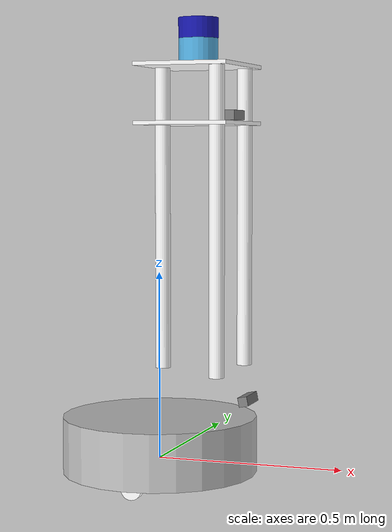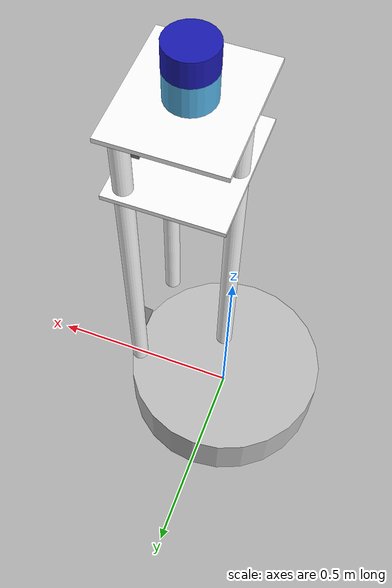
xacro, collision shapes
<?xml version="1.0"?>

<robot name="water_all" xmlns:xacro="http://ros.org/wiki/xacro">
  <xacro:property name="M_PI" value="3.1415926535897931" />
  <link name="base_footprint"/>

  <joint name="base_footprint_joint" type="fixed">
    <parent link="base_footprint"/>
    <child link="base_link"/>
    <origin xyz="0 0 0" rpy="0 0 0"/>
  </joint>

  <link
    name="base_link">
        >
    <inertial>
      <origin
        xyz="0.000104664511012093 0.0049105114230535 0.145650059711867"
        rpy="0 0 0" />
      <mass
        value="3.71154442446242" />
      <inertia
        ixx="0.0465430882693072"
        ixy="0"
        ixz="0"
        iyy="0.0625130465095892"
        iyz="0"
        izz="0.0934102121820444" />
    </inertial>
    <visual>
      <origin
        xyz="0 0 0"
        rpy="0 0 -${M_PI/2}" />
      <geometry>
        <mesh
          filename="package://water_description/meshes/base_link.STL" />
      </geometry>
      <material
        name="">
        <color
          rgba="0.752941176470588 0.752941176470588 0.752941176470588 1" />
      </material>
    </visual>
    <collision>
      <origin
        xyz="0 0 0.04"
        rpy="0 0 -${M_PI/2}" />
      <geometry>
        <cylinder length="0.15" radius="0.26"/>
      </geometry>
    </collision>
  </link>

 <joint name="base_link2_joint" type="fixed">
    <parent link="base_link"/>
    <child link="base_link2"/>
    <origin xyz="0.0 0.0 0.0" rpy="0 0 -${M_PI/2}"/>
    <axis xyz="0 0 1"/>
  </joint>

  <link name="base_link2">
    <visual>
      <geometry>
        <cylinder length="0.0206" radius="0.00035"/>
      </geometry>
      <origin xyz="0 0 0" rpy="0 0 0"/>
    </visual>
    <collision>
      <geometry>
        <cylinder length="0.0206" radius="0.035"/>
      </geometry>
      <origin rpy="0 0 0" xyz="0 0 0"/>
    </collision>
    <inertial>
      <mass value="0.01" />
      <origin xyz="0 0 0" />
      <inertia ixx="0.001" ixy="0.0" ixz="0.0"
                iyy="0.001" iyz="0.0"
                izz="0.001" />
    </inertial>
  </link>

 <joint name="wheel_left_joint" type="continuous">
    <parent link="base_link2"/>
    <child link="wheel_left_link"/>
    <origin xyz="-${0.40/2} 0.0 -0.04" rpy="${-M_PI/2} 0 ${M_PI/2}"/>
    <axis xyz="0 0 1"/>
  </joint>

  <link name="wheel_left_link">
    <visual>
      <material
        name="">
        <color
          rgba="1.0 1.0 1.0 1" />
      </material>
      <geometry>
        <cylinder length="0.0206" radius="0.028"/>
      </geometry>
      <origin xyz="0 0 0" rpy="0 0 0"/>
    </visual>
    <collision>
      <geometry>
        <cylinder length="0.0206" radius="0.028"/>
      </geometry>
      <origin rpy="0 0 0" xyz="0 0 0"/>
    </collision>
    <inertial>
      <mass value="0.01" />
      <origin xyz="0 0 0" />
      <inertia ixx="0.001" ixy="0.0" ixz="0.0"
                iyy="0.001" iyz="0.0"
                izz="0.001" />
    </inertial>
  </link>

  <joint name="wheel_right_joint" type="continuous">
    <parent link="base_link2"/>
    <child link="wheel_right_link"/>
    <origin xyz="${0.40/2} 0.0 -0.04" rpy="${-M_PI/2} 0 ${M_PI/2}"/>
    <axis xyz="0 0 1"/>
  </joint>
  <link name="wheel_right_link">
    <visual>
      <material
        name="">
        <color
          rgba="1.0 1.0 1.0 1" />
      </material>
      <geometry>
        <cylinder length="0.0206" radius="0.028"/>
      </geometry>
      <origin xyz="0 0 0" rpy="0 0 0"/>
    </visual>
    <collision>
      <geometry>
        <cylinder length="0.0206" radius="0.028"/>
      </geometry>
      <origin rpy="0 0 0" xyz="0 0 0"/>
    </collision>
    <inertial>
      <mass value="0.01" />
      <origin xyz="0 0 0" />
      <inertia ixx="0.001" ixy="0.0" ixz="0.0"
                iyy="0.001" iyz="0.0"
                izz="0.001" />
    </inertial>
  </link>

  <joint name="caster_front_joint" type="fixed">
    <parent link="base_link2"/>
    <child link="caster_front_link"/>
    <origin xyz="0 0.15 -0.05" rpy="${-M_PI/2} 0 ${M_PI/2}"/>
  </joint>
  <link name="caster_front_link">
    <collision>
      <geometry>
        <cylinder length="0.0176" radius="0.017"/>
      </geometry>
      <origin rpy="0 0 0" xyz="0 0 0"/>
    </collision>
    <inertial>
      <mass value="0.01" />
      <origin xyz="0 0 0" />
      <inertia ixx="0.1" ixy="0.0" ixz="0.0"
                iyy="0.1" iyz="0.0"
                izz="0.1" />
    </inertial>
    <visual>
      <material
        name="">
        <color
          rgba="1.0 1.0 1.0 1" />
      </material>
      <geometry>
        <cylinder length="0.0176" radius="0.017"/>
      </geometry>
      <origin xyz="0 0 0" rpy="0 0 0"/>
    </visual>
  </link>

  <joint name="caster_back_joint" type="fixed">
    <parent link="base_link2"/>
    <child link="caster_back_link"/>
    <origin xyz="0.0 -0.15 -0.05" rpy="${-M_PI/2} 0 ${M_PI/2}"/>
  </joint>
  <link name="caster_back_link">
    <collision>
      <geometry>
        <cylinder length="0.0176" radius="0.017"/>
      </geometry>
      <origin rpy="0 0 0" xyz="0 0 0"/>
    </collision>
    <inertial>
      <mass value="0.01" />
      <origin xyz="0 0 0" />
      <inertia ixx="0.1" ixy="0.0" ixz="0.0"
                iyy="0.1" iyz="0.0"
                izz="0.1" />
    </inertial>
    <visual>
      <material
        name="">
        <color
          rgba="1.0 1.0 1.0 1" />
      </material>
      <geometry>
        <cylinder length="0.0176" radius="0.017"/>
      </geometry>
      <origin xyz="0 0 0" rpy="0 0 0"/>
    </visual>
  </link>

  <link name="holder1">
    <collision>
      <geometry>
        <cylinder length="0.8" radius="0.02"/>
      </geometry>
      <origin rpy="0 0 0" xyz="0 0 0"/>
    </collision>
    <inertial>
      <mass value="0.01" />
      <origin xyz="0 0 -0.3" />
      <inertia ixx="0.001" ixy="0.0" ixz="0.0"
                iyy="0.001" iyz="0.0"
                izz="0.001" />
    </inertial>
    <visual>
      <material
        name="">
        <color
          rgba="1.0 1.0 1.0 1" />
      </material>
      <geometry>
        <cylinder length="0.8" radius="0.02"/>
      </geometry>
      <origin xyz="0 0 0" rpy="0 0 0"/>
    </visual>
  </link>

  <link name="holder2">
    <collision>
      <geometry>
        <cylinder length="0.8" radius="0.02"/>
      </geometry>
      <origin rpy="0 0 0" xyz="0 0 0"/>
    </collision>
    <inertial>
      <mass value="0.01" />
      <origin xyz="0 0 -0.3" />
      <inertia ixx="0.001" ixy="0.0" ixz="0.0"
                iyy="0.001" iyz="0.0"
                izz="0.001" />
    </inertial>
    <visual>
      <material
        name="">
        <color
          rgba="1.0 1.0 1.0 1" />
      </material>
      <geometry>
        <cylinder length="0.8" radius="0.02"/>
      </geometry>
      <origin xyz="0 0 0" rpy="0 0 0"/>
    </visual>
  </link>

  <link name="holder3">
    <collision>
      <geometry>
        <cylinder length="0.8" radius="0.02"/>
      </geometry>
      <origin rpy="0 0 0" xyz="0 0 0"/>
    </collision>
    <inertial>
      <mass value="0.01" />
      <origin xyz="0 0 -0.3" />
      <inertia ixx="0.001" ixy="0.0" ixz="0.0"
                iyy="0.001" iyz="0.0"
                izz="0.001" />
    </inertial>
    <visual>
      <material
        name="">
        <color
          rgba="1.0 1.0 1.0 1" />
      </material>
      <geometry>
        <cylinder length="0.8" radius="0.02"/>
      </geometry>
      <origin xyz="0 0 0" rpy="0 0 0"/>
    </visual>
  </link>

  <joint name="holder1_joint" type="fixed">
    <origin xyz="0.0 0.01 0.645" rpy="0 0 0"/>
    <parent link="base_link2"/>
    <child link="holder1"/>
  </joint>
  <joint name="holder2_joint" type="fixed">
    <origin xyz="0.1175 0.2 0.645" rpy="0 0 0"/>
    <parent link="base_link2"/>
    <child link="holder2"/>
  </joint>
  <joint name="holder3_joint" type="fixed">
    <origin xyz="-0.1175 0.2 0.645" rpy="0 0 0"/>
    <parent link="base_link2"/>
    <child link="holder3"/>
  </joint>

  <link name="pan1">
    <collision>
      <geometry>
        <box size=".3 .25 .01"/>
      </geometry>
      <origin rpy="0 0 0" xyz="0 0 0"/>
    </collision>
    <inertial>
      <mass value="0.01" />
      <origin xyz="0 0 0" />
      <inertia ixx="0.001" ixy="0.0" ixz="0.0"
                iyy="0.001" iyz="0.0"
                izz="0.001" />
    </inertial>
    <visual>
      <material
        name="">
        <color
          rgba="1.0 1.0 1.0 1" />
      </material>
      <geometry>
        <box size=".3 .25 .01"/>
      </geometry>
      <origin xyz="0 0 0" rpy="0 0 0"/>
    </visual>
  </link>
  <link name="pan2">
    <collision>
      <geometry>
        <box size=".3 .25 .01"/>
      </geometry>
      <origin rpy="0 0 0" xyz="0 0 0"/>
    </collision>
    <inertial>
      <mass value="0.01" />
      <origin xyz="0 0 0" />
      <inertia ixx="0.001" ixy="0.0" ixz="0.0"
                iyy="0.001" iyz="0.0"
                izz="0.001" />
    </inertial>
    <visual>
      <material
        name="">
        <color
          rgba="1.0 1.0 1.0 1" />
      </material>
      <geometry>
        <box size=".3 .25 .01"/>
      </geometry>
      <origin xyz="0 0 0" rpy="0 0 0"/>
    </visual>
  </link>
  <joint name="pan1_joint" type="fixed">
    <origin xyz="0 0.1 0.4" rpy="0 0 0"/>
    <parent link="holder1"/>
    <child link="pan1"/>
  </joint>
  <joint name="pan2_joint" type="fixed">
    <origin xyz="0 0 -0.15" rpy="0 0 0"/>
    <parent link="pan1"/>
    <child link="pan2"/>
  </joint>

  <!-- Hokuyo Laser -->
  <link name="hokuyo_link">

    <visual>
      <origin xyz="0 0 0" rpy="0 0 0"/>
      <material
        name="">
        <color
          rgba="0.75294 0.75294 0.75294 1" />
      </material>
      <geometry>
        <box size="0.01 0.01 0.01"/>
      </geometry>
    </visual>

    <inertial>
      <mass value="1e-5" />
      <origin xyz="0 0 0" rpy="0 0 0"/>
      <inertia ixx="1e-6" ixy="0" ixz="0" iyy="1e-6" iyz="0" izz="1e-6" />
    </inertial>
  </link>

  <joint name="hokuyo_joint" type="fixed">
    <axis xyz="0 1 0" />
    <origin xyz="0 0 0.2" rpy="0 0 0"/>
    <parent link="base_link2"/>
    <child link="hokuyo_link"/>
  </joint>

  <xacro:include filename="$(find water_description)/urdf/depthcam.xacro"/>
  <xacro:realsense_d435 sensor_name="d435_low" parent_link="base_link2" rate="10">
    <origin rpy="0 -0.2 ${M_PI/2} " xyz="0 0.25 0.16"/>
  </xacro:realsense_d435>

  <xacro:realsense_d435 sensor_name="d435_high" parent_link="pan2" rate="10">
    <origin rpy="0 0 ${M_PI/2}" xyz="0 0.1 0.008"/>
  </xacro:realsense_d435>

  <xacro:include filename="$(find water_description)/urdf/VLP-16.xacro"/>
  <xacro:VLP-16 parent="pan1" name="velodyne" topic="/velodyne_points">
    <origin xyz="0 0 0.0" rpy="0 0 ${M_PI/2 + 33.0/180.0*M_PI}" />
  </xacro:VLP-16>

  <xacro:include filename="$(find water_description)/urdf/omni_60.urdf.xacro"/>
  <xacro:omni_60 parent="pan1" name="omni_60">
    <origin xyz="0 0 0.07" rpy="0 0 0" />
  </xacro:omni_60>

  <gazebo reference="wheel_left_link">
    <mu1>0.8</mu1>
    <mu2>0.8</mu2>
    <material>Gazebo/FlatBlack</material>
  </gazebo>

  <gazebo reference="wheel_right_link">
    <mu1>0.8</mu1>
    <mu2>0.8</mu2>
    <material>Gazebo/FlatBlack</material>
  </gazebo>

  <gazebo reference="caster_front_link">
    <mu1>0</mu1>
    <mu2>0</mu2>
    <material>Gazebo/FlatBlack</material>
  </gazebo>

  <gazebo reference="caster_back_link">
    <mu1>0</mu1>
    <mu2>0</mu2>
    <material>Gazebo/FlatBlack</material>
  </gazebo>

  <gazebo>
    <plugin name="differential_drive_controller" filename="libgazebo_ros_diff_drive.so">
      <alwaysOn>true</alwaysOn>
      <updateRate>20</updateRate>
      <leftJoint>wheel_left_joint</leftJoint>
      <rightJoint>wheel_right_joint</rightJoint>
      <wheelSeparation>0.40</wheelSeparation>
      <wheelDiameter>0.056</wheelDiameter>

      <wheelTorque>300</wheelTorque>
      <wheelAcceleration>1.0</wheelAcceleration>
      <rosDebugLevel>na</rosDebugLevel>
      <publishWheelJointState>true</publishWheelJointState>
      <odometrySource>world</odometrySource>
      <publishTf>1</publishTf>

      <legacyMode>true</legacyMode>
      <commandTopic>cmd_vel</commandTopic>
      <odometryTopic>odom</odometryTopic>
      <odometryFrame>odom</odometryFrame>
      <robotBaseFrame>base_footprint</robotBaseFrame>
      <publishWheelTF>true</publishWheelTF>
      <publishOdomTF>true</publishOdomTF>
    </plugin>
  </gazebo>

  <!-- hokuyo -->
  <gazebo reference="hokuyo_link">
    <sensor type="ray" name="head_hokuyo_sensor">
      <pose>0 0 0 0 0 0</pose>
      <visualize>true</visualize>
      <update_rate>40</update_rate>
      <ray>
        <scan>
          <horizontal>
            <samples>720</samples>
            <resolution>1</resolution>
            <min_angle>-3.14</min_angle>
            <max_angle>3.14</max_angle>
          </horizontal>
        </scan>
        <range>
          <min>0.1</min>
          <max>30.0</max>
          <resolution>0.01</resolution>
        </range>
        <noise>
          <type>gaussian</type>
          <mean>0.0</mean>
          <stddev>0.01</stddev>
      </noise>
      </ray>
      <plugin name="gazebo_ros_head_hokuyo_controller" filename="libgazebo_ros_laser.so">
        <topicName>/scan</topicName>
        <frameName>hokuyo_link</frameName>
      </plugin>
    </sensor>
  </gazebo>

  <gazebo reference="base_link">
    <collision name="base_link_collision">
      <surface>
        <contact>
          <collide_bitmask>0x02</collide_bitmask>
        </contact>
      </surface>
    </collision>
  </gazebo>

</robot>

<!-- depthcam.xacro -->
<robot xmlns:xacro="http://www.ros.org/wiki/xacro">

  <xacro:include filename="$(find water_description)/urdf/inertia_calc.xacro"/>

  <!-- INTEL REALSENSE D435 -->

  <xacro:macro name="realsense_d435" params="sensor_name parent_link *origin rate">

    <xacro:property name="d435_cam_depth_to_left_ir_offset" value="0.0"/>
    <xacro:property name="d435_cam_depth_to_right_ir_offset" value="-0.050"/>
    <xacro:property name="d435_cam_depth_to_color_offset" value="0.015"/>
    <xacro:property name="d435_cam_width" value="0.090"/>
    <xacro:property name="d435_cam_height" value="0.025"/>
    <xacro:property name="d435_cam_depth" value="0.02505"/>
    <xacro:property name="d435_cam_mass" value="0.564"/>
    <xacro:property name="d435_cam_mount_from_center_offset" value="0.0149"/>
    <xacro:property name="d435_cam_depth_px" value="${d435_cam_mount_from_center_offset}"/>
    <xacro:property name="d435_cam_depth_py" value="0.0175"/>
    <xacro:property name="d435_cam_depth_pz" value="${d435_cam_height/2}"/>

    <!-- camera body, with origin at bottom screw mount -->
    <joint name="${sensor_name}_joint" type="fixed">
      <xacro:insert_block name="origin" />
      <parent link="${parent_link}"/>
      <child link="${sensor_name}_bottom_screw_frame" />
    </joint>
    <link name="${sensor_name}_bottom_screw_frame"/>

    <joint name="${sensor_name}_link_joint" type="fixed">
      <origin xyz="0 ${d435_cam_depth_py} ${d435_cam_depth_pz}" rpy="0 0 0"/>
      <parent link="${sensor_name}_bottom_screw_frame"/>
      <child link="${sensor_name}_link" />
    </joint>

    <link name="${sensor_name}_link">
      <visual>
        <origin xyz="${d435_cam_mount_from_center_offset} ${-d435_cam_depth_py} 0" rpy="${pi/2} 0 ${pi/2}"/>
        <material
          name="">
          <color
            rgba="0.5 0.5 0.5 1" />
        </material>
        <geometry>
          <mesh filename="package://water_description/meshes/realsense_d435.stl" />
        </geometry>
      </visual>
      <collision>
        <origin xyz="0 ${-d435_cam_depth_py} 0" rpy="0 0 0"/>
        <geometry>
          <box size="${d435_cam_depth} ${d435_cam_width} ${d435_cam_height}"/>
        </geometry>
      </collision>
      <inertial>
        <mass value="${d435_cam_mass}" />
        <origin xyz="0 ${-d435_cam_depth_py} 0" rpy="0 0 0"/>
        <xacro:box_inertia m="${d435_cam_mass}" x="${d435_cam_depth}" y="${d435_cam_width}" z="${d435_cam_height}"/>
      </inertial>
    </link>

    <!-- camera depth joints and links -->
    <joint name="${sensor_name}_depth_joint" type="fixed">
      <origin xyz="0 0 0" rpy="0 0 0"/>
      <parent link="${sensor_name}_link"/>
      <child link="${sensor_name}_depth_frame" />
    </joint>
    <link name="${sensor_name}_depth_frame"/>

    <joint name="${sensor_name}_depth_optical_joint" type="fixed">
      <origin xyz="0 0 0" rpy="${-pi/2} 0 ${-pi/2}" />
      <parent link="${sensor_name}_depth_frame" />
      <child link="${sensor_name}_depth_optical_frame" />
    </joint>
    <link name="${sensor_name}_depth_optical_frame"/>

    <!-- camera left IR joints and links -->
    <joint name="${sensor_name}_left_ir_joint" type="fixed">
      <origin xyz="0 ${d435_cam_depth_to_left_ir_offset} 0" rpy="0 0 0" />
      <parent link="${sensor_name}_depth_frame" />
      <child link="${sensor_name}_left_ir_frame" />
    </joint>
    <link name="${sensor_name}_left_ir_frame"/>

    <joint name="${sensor_name}_left_ir_optical_joint" type="fixed">
      <origin xyz="0 0 0" rpy="${-pi/2} 0 ${-pi/2}" />
      <parent link="${sensor_name}_left_ir_frame" />
      <child link="${sensor_name}_left_ir_optical_frame" />
    </joint>
    <link name="${sensor_name}_left_ir_optical_frame"/>

    <!-- camera right IR joints and links -->
    <joint name="${sensor_name}_right_ir_joint" type="fixed">
      <origin xyz="0 ${d435_cam_depth_to_right_ir_offset} 0" rpy="0 0 0" />
      <parent link="${sensor_name}_depth_frame" />
      <child link="${sensor_name}_right_ir_frame" />
    </joint>
    <link name="${sensor_name}_right_ir_frame"/>

    <joint name="${sensor_name}_right_ir_optical_joint" type="fixed">
      <origin xyz="0 0 0" rpy="${-pi/2} 0 ${-pi/2}" />
      <parent link="${sensor_name}_right_ir_frame" />
      <child link="${sensor_name}_right_ir_optical_frame" />
    </joint>
    <link name="${sensor_name}_right_ir_optical_frame"/>

    <!-- camera color joints and links -->
    <joint name="${sensor_name}_color_joint" type="fixed">
      <origin xyz="0 ${d435_cam_depth_to_color_offset} 0" rpy="0 0 0" />
      <parent link="${sensor_name}_depth_frame" />
      <child link="${sensor_name}_color_frame" />
    </joint>
    <link name="${sensor_name}_color_frame"/>

    <joint name="${sensor_name}_color_optical_joint" type="fixed">
      <origin xyz="0 0 0" rpy="${-pi/2} 0 ${-pi/2}" />
      <parent link="${sensor_name}_color_frame" />
      <child link="${sensor_name}_color_optical_frame" />
    </joint>
    <link name="${sensor_name}_color_optical_frame"/>

    <!-- gazebo plugin -->

    <xacro:property name="deg_to_rad" value="0.01745329251994329577" />

    <gazebo reference="${sensor_name}_link">
      <self_collide>0</self_collide>
      <enable_wind>0</enable_wind>
      <kinematic>0</kinematic>
      <gravity>true</gravity>
      <mu2>1</mu2>
      <fdir1>0 0 0</fdir1>
      <kp>1e+13</kp>
      <kd>1</kd>

      <sensor name="${sensor_name}_color" type="camera">
        <camera name="${sensor_name}">
          <horizontal_fov>${69.4*deg_to_rad}</horizontal_fov>
          <image>
            <width>640</width>
            <height>480</height>
            <format>RGB_INT8</format>
          </image>
          <clip>
            <near>0.1</near>
            <far>100</far>
          </clip>
          <noise>
            <type>gaussian</type>
            <mean>0.0</mean>
            <stddev>0.007</stddev>
          </noise>
        </camera>
        <always_on>1</always_on>
        <update_rate>30</update_rate>
        <visualize>1</visualize>
      </sensor>
      <sensor name="${sensor_name}_ired1" type="camera">
        <camera name="${sensor_name}">
          <horizontal_fov>${85.2*deg_to_rad}</horizontal_fov>
          <image>
            <width>1280</width>
            <height>720</height>
            <format>L_INT8</format>
          </image>
          <clip>
            <near>0.1</near>
            <far>100</far>
          </clip>
          <noise>
            <type>gaussian</type>
            <mean>0.0</mean>
            <stddev>0.05</stddev>
          </noise>
        </camera>
        <always_on>1</always_on>
        <update_rate>90</update_rate>
        <visualize>0</visualize>
      </sensor>
      <sensor name="${sensor_name}_ired2" type="camera">
        <camera name="${sensor_name}">
          <horizontal_fov>${85.2*deg_to_rad}</horizontal_fov>
          <image>
            <width>1280</width>
            <height>720</height>
            <format>L_INT8</format>
          </image>
          <clip>
            <near>0.1</near>
            <far>100</far>
          </clip>
          <noise>
            <type>gaussian</type>
            <mean>0.0</mean>
            <stddev>0.05</stddev>
          </noise>
        </camera>
        <always_on>1</always_on>
        <update_rate>90</update_rate>
        <visualize>0</visualize>
      </sensor>
      <sensor name="${sensor_name}_depth" type="depth">
        <camera name="${sensor_name}">
          <horizontal_fov>${85.2*deg_to_rad}</horizontal_fov>
          <image>
            <width>1280</width>
            <height>720</height>
          </image>
          <clip>
            <near>0.1</near>
            <far>100</far>
          </clip>
          <noise>
            <type>gaussian</type>
            <mean>0.0</mean>
            <stddev>0.100</stddev>
          </noise>
        </camera>
        <always_on>1</always_on>
        <update_rate>90</update_rate>
        <visualize>0</visualize>
      </sensor>
    </gazebo>

    <gazebo>
      <plugin name="${sensor_name}" filename="librealsense_gazebo_plugin.so">
        <prefix>${sensor_name}_</prefix>
        <depthUpdateRate>${rate}</depthUpdateRate>
        <colorUpdateRate>${rate}</colorUpdateRate>
        <infraredUpdateRate>${rate}</infraredUpdateRate>
        <depthTopicName>depth/image_raw</depthTopicName>
        <depthCameraInfoTopicName>depth/camera_info</depthCameraInfoTopicName>
        <colorTopicName>color/image_raw</colorTopicName>
        <colorCameraInfoTopicName>color/camera_info</colorCameraInfoTopicName>
        <infrared1TopicName>infra1/image_raw</infrared1TopicName>
        <infrared1CameraInfoTopicName>infra1/camera_info</infrared1CameraInfoTopicName>
        <infrared2TopicName>infra2/image_raw</infrared2TopicName>
        <infrared2CameraInfoTopicName>infra2/camera_info</infrared2CameraInfoTopicName>
        <colorOpticalframeName>${sensor_name}_color_optical_frame</colorOpticalframeName>
        <depthOpticalframeName>${sensor_name}_depth_optical_frame</depthOpticalframeName>
        <infrared1OpticalframeName>${sensor_name}_infrared1_optical_frame</infrared1OpticalframeName>
        <infrared2OpticalframeName>${sensor_name}_infrared2_optical_frame</infrared2OpticalframeName>
        <rangeMinDepth>0.2</rangeMinDepth>
        <rangeMaxDepth>10.0</rangeMaxDepth>
        <pointCloud>false</pointCloud>
        <pointCloudTopicName>depth/color/points</pointCloudTopicName>
        <pointCloudCutoff>0.25</pointCloudCutoff>
        <pointCloudCutoffMax>9.0</pointCloudCutoffMax>
      </plugin>
    </gazebo>

  </xacro:macro>

</robot>

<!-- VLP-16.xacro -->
<robot xmlns:xacro="http://www.ros.org/wiki/xacro" name="VLP-16">
  <xacro:property name="M_PI" value="3.1415926535897931" />
  <xacro:macro name="VLP-16" params="*origin parent:=base_link name:=velodyne topic:=/velodyne_points organize_cloud:=false hz:=10 lasers:=16 samples:=1875 collision_range:=0.3 min_range:=0.9 max_range:=130.0 noise:=0.008 min_angle:=-${M_PI} max_angle:=${M_PI} gpu:=false">

    <joint name="${name}_base_mount_joint" type="fixed">
      <xacro:insert_block name="origin" />
      <parent link="${parent}"/>
      <child link="${name}_base_link"/>
    </joint>

    <link name="${name}_base_link">
      <inertial>
        <mass value="0.83"/>
        <origin xyz="0 0 0.03585"/>
        <inertia ixx="${(0.83 * (3.0*0.0516*0.0516 + 0.0717*0.0717)) / 12.0}" ixy="0" ixz="0"
          iyy="${(0.83 * (3.0*0.0516*0.0516 + 0.0717*0.0717)) / 12.0}" iyz="0"
          izz="${0.5 * 0.83 * (0.0516*0.0516)}"/>
      </inertial>
      <visual>
        <geometry>
          <mesh filename="package://water_description/meshes/VLP16_base_1.dae" />
        </geometry>
      </visual>
      <visual>
        <geometry>
          <mesh filename="package://water_description/meshes/VLP16_base_2.dae" />
        </geometry>
      </visual>
      <collision>
        <origin rpy="0 0 0" xyz="0 0 0.03585"/>
        <geometry>
          <cylinder radius="0.0516" length="0.0717"/>
        </geometry>
      </collision>
    </link>

    <joint name="${name}_base_scan_joint" type="fixed" >
      <origin xyz="0 0 0.0377" rpy="0 0 0" />
      <parent link="${name}_base_link" />
      <child link="${name}"/>
    </joint>

    <link name="${name}">
      <inertial>
        <mass value="0.01"/>
        <origin xyz="0 0 0"/>
        <inertia ixx="1e-7" ixy="0" ixz="0" iyy="1e-7" iyz="0" izz="1e-7"/>
      </inertial>
      <visual>
        <origin xyz="0 0 -0.0377" />
        <geometry>
          <mesh filename="package://water_description/meshes/VLP16_scan.dae" />
        </geometry>
      </visual>
    </link>

    <!-- Gazebo requires the velodyne_gazebo_plugins package -->
    <gazebo reference="${name}">
      <xacro:if value="${gpu}">
        <sensor type="gpu_ray" name="${name}-VLP16">
          <pose>0 0 0 0 0 0</pose>
          <visualize>false</visualize>
          <update_rate>${hz}</update_rate>
          <ray>
            <scan>
              <horizontal>
                <samples>${samples}</samples>
                <resolution>1</resolution>
                <min_angle>${min_angle}</min_angle>
                <max_angle>${max_angle}</max_angle>
              </horizontal>
              <vertical>
                <samples>${lasers}</samples>
                <resolution>1</resolution>
                <min_angle>-${15.0*M_PI/180.0}</min_angle>
                <max_angle> ${15.0*M_PI/180.0}</max_angle>
              </vertical>
            </scan>
            <range>
              <min>${collision_range}</min>
              <max>${max_range+1}</max>
              <resolution>0.001</resolution>
            </range>
            <noise>
              <type>gaussian</type>
              <mean>0.0</mean>
              <stddev>0.0</stddev>
            </noise>
          </ray>
          <plugin name="gazebo_ros_laser_controller" filename="libgazebo_ros_velodyne_gpu_laser.so">
            <topicName>${topic}</topicName>
            <frameName>${name}</frameName>
            <organize_cloud>${organize_cloud}</organize_cloud>
            <min_range>${min_range}</min_range>
            <max_range>${max_range}</max_range>
            <gaussianNoise>${noise}</gaussianNoise>
          </plugin>
        </sensor>
      </xacro:if>
      <xacro:unless value="${gpu}">
        <sensor type="ray" name="${name}-VLP16">
          <pose>0 0 0 0 0 0</pose>
          <visualize>false</visualize>
          <update_rate>${hz}</update_rate>
          <ray>
            <scan>
              <horizontal>
                <samples>${samples}</samples>
                <resolution>1</resolution>
                <min_angle>${min_angle}</min_angle>
                <max_angle>${max_angle}</max_angle>
              </horizontal>
              <vertical>
                <samples>${lasers}</samples>
                <resolution>1</resolution>
                <min_angle>-${15.0*M_PI/180.0}</min_angle>
                <max_angle> ${15.0*M_PI/180.0}</max_angle>
              </vertical>
            </scan>
            <range>
              <min>${collision_range}</min>
              <max>${max_range+1}</max>
              <resolution>0.001</resolution>
            </range>
            <noise>
              <type>gaussian</type>
              <mean>0.0</mean>
              <stddev>0.0</stddev>
            </noise>
          </ray>
          <plugin name="gazebo_ros_laser_controller" filename="libgazebo_ros_velodyne_laser.so">
            <topicName>${topic}</topicName>
            <frameName>${name}</frameName>
            <organize_cloud>${organize_cloud}</organize_cloud>
            <min_range>${min_range}</min_range>
            <max_range>${max_range}</max_range>
            <gaussianNoise>${noise}</gaussianNoise>
          </plugin>
        </sensor>
      </xacro:unless>
    </gazebo>

  </xacro:macro>
</robot>

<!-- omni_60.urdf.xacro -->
<robot xmlns:xacro="http://wiki.ros.org/xacro">
  <xacro:macro name="omni_60" params="parent name='omni_60' *origin">
    <link name="${name}_base_link">
      <visual>
        <geometry>
          <mesh filename="package://water_description/meshes/omni_60.stl" />
        </geometry>
        <origin xyz="0 0 0" rpy="${pi/2} 0 -${pi/2}" />
        <material name="navy">
          <color rgba="0.1 0.1 0.7 1" />
        </material>
      </visual>
      <!-- For simplicity, treat the collision model as a cylinder -->
      <collision>
        <geometry>
          <cylinder radius="0.05225" length="0.0535" />
        </geometry>
        <origin xyz="0 0 ${0.0535/2}" rpy="0 0 0" />
      </collision>
    </link>
    <joint name="${name}_base_joint" type="fixed">
      <parent link="${parent}" />
      <child link="${name}_base_link" />
      <xacro:insert_block name="origin" />
    </joint>

    <!-- TODO double-check which way around the lenses are enumerated on an actual camera -->
    <link name="${name}_camera1_link"/>
    <link name="${name}_camera2_link"/>
    <link name="${name}_camera3_link"/>
    <link name="${name}_camera4_link"/>
    <link name="${name}_camera5_link"/>

    <link name="${name}_camera1_internal_link"/>
    <link name="${name}_camera2_internal_link"/>
    <link name="${name}_camera3_internal_link"/>
    <link name="${name}_camera4_internal_link"/>
    <link name="${name}_camera5_internal_link"/>

    <joint name="${name}_camera3_orientation_joint" type="fixed">
      <parent link="${name}_base_link" />
      <child link="${name}_camera3_internal_link" />
      <origin xyz="0 0 0.026" rpy="0 0 0" />
    </joint>
    <joint name="${name}_camera2_orientation_joint" type="fixed">
      <parent link="${name}_camera3_internal_link" />
      <child link="${name}_camera2_internal_link" />
      <origin xyz="0 0 0" rpy="0 0 ${2*pi/5}" />
    </joint>
    <joint name="${name}_camera1_orientation_joint" type="fixed">
      <parent link="${name}_camera3_internal_link" />
      <child link="${name}_camera1_internal_link" />
      <origin xyz="0 0 0" rpy="0 0 ${4*pi/5}" />
    </joint>
    <joint name="${name}_camera4_orientation_joint" type="fixed">
      <parent link="${name}_camera3_internal_link" />
      <child link="${name}_camera4_internal_link" />
      <origin xyz="0 0 0" rpy="0 0 -${2*pi/5}" />
    </joint>
    <joint name="${name}_camera5_orientation_joint" type="fixed">
      <parent link="${name}_camera3_internal_link" />
      <child link="${name}_camera5_internal_link" />
      <origin xyz="0 0 0" rpy="0 0 -${4*pi/5}" />
    </joint>

    <joint name="${name}_camera3_joint" type="fixed">
      <parent link="${name}_camera3_internal_link" />
      <child link="${name}_camera3_link" />
      <origin xyz="0.05225 0 0" rpy="0 0 0" />
    </joint>
    <joint name="${name}_camera2_joint" type="fixed">
      <parent link="${name}_camera2_internal_link" />
      <child link="${name}_camera2_link" />
      <origin xyz="0.05225 0 0" rpy="0 0 0" />
    </joint>
    <joint name="${name}_camera1_joint" type="fixed">
      <parent link="${name}_camera1_internal_link" />
      <child link="${name}_camera1_link" />
      <origin xyz="0.05225 0 0" rpy="0 0 0" />
    </joint>
    <joint name="${name}_camera4_joint" type="fixed">
      <parent link="${name}_camera4_internal_link" />
      <child link="${name}_camera4_link" />
      <origin xyz="0.05225 0 0" rpy="0 0 0" />
    </joint>
    <joint name="${name}_camera5_joint" type="fixed">
      <parent link="${name}_camera5_internal_link" />
      <child link="${name}_camera5_link" />
      <origin xyz="0.05225 0 0" rpy="0 0 0" />
    </joint>
  </xacro:macro>
</robot>
